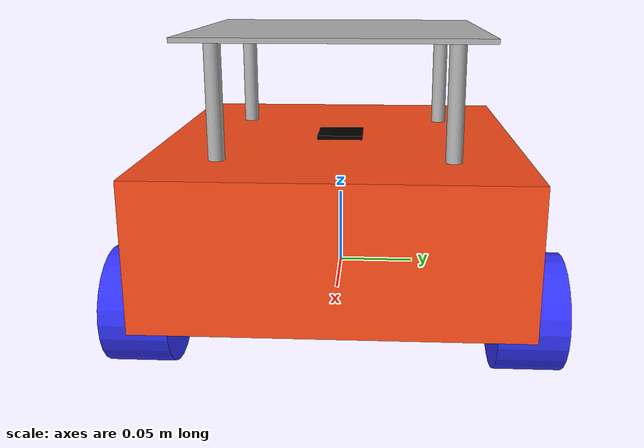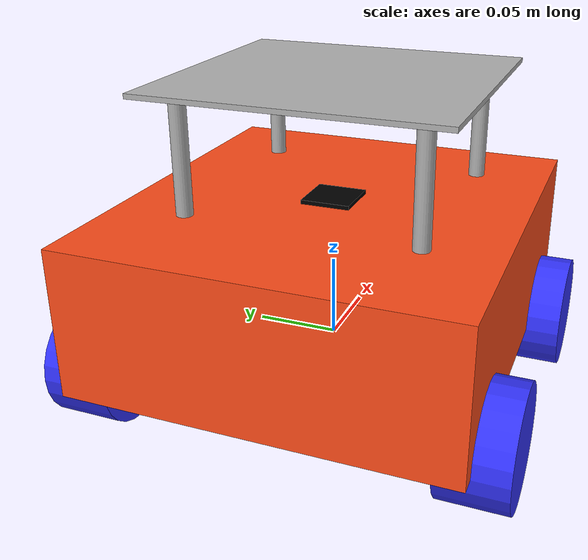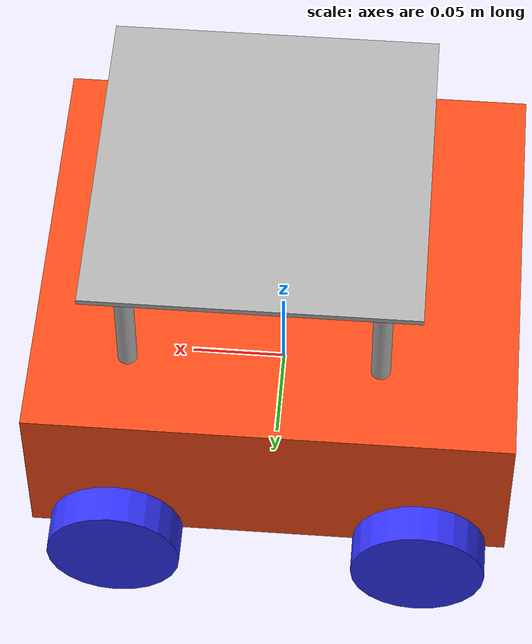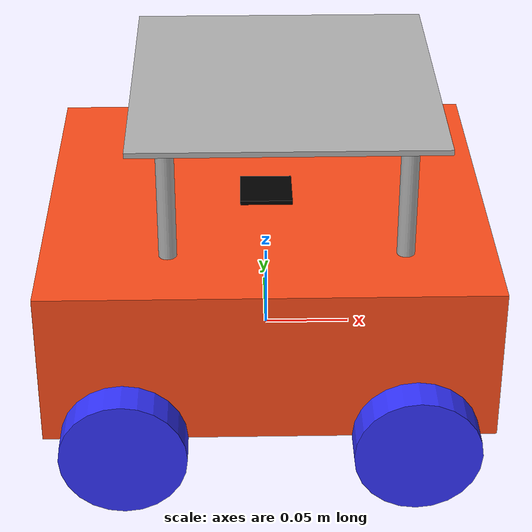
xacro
<?xml version="1.0"?>
<robot xmlns:xacro="http://www.ros.org/wiki/xacro">

  <xacro:include filename="inertial_macros.xacro"/>

  <!-- ═══════════════════════════════════════════════════════
       Properties
  ═══════════════════════════════════════════════════════ -->
  <xacro:property name="chassis_length"    value="0.25"/>
  <xacro:property name="chassis_width"     value="0.23"/>
  <xacro:property name="chassis_height"    value="0.09"/>
  <xacro:property name="chassis_mass"      value="1.0"/>

  <xacro:property name="wheel_radius"      value="0.035"/>
  <xacro:property name="wheel_thickness"   value="0.04"/>
  <xacro:property name="wheel_mass"        value="0.05"/>
  <xacro:property name="wheel_offset_x"    value="0.11"/>
  <xacro:property name="wheel_offset_y"    value="0.115"/>
  <xacro:property name="wheel_offset_z"    value="0.0"/>

  <xacro:property name="standoff_height"   value="0.07"/>
  <xacro:property name="standoff_radius"   value="0.005"/>
  <xacro:property name="plate_length"      value="0.17"/>
  <xacro:property name="plate_width"       value="0.18"/>
  <xacro:property name="plate_thickness"   value="0.003"/>
  <xacro:property name="standoff_inset_x"  value="0.02"/>
  <xacro:property name="standoff_inset_y"  value="0.02"/>

  <xacro:property name="plate_center_x"    value="0.01"/>
  <xacro:property name="plate_center_y"    value="0.0"/>
  <xacro:property name="plate_center_z"    value="${chassis_height + standoff_height + plate_thickness/2}"/>
  <xacro:property name="sx"                value="${(plate_length/2) - standoff_inset_x}"/>
  <xacro:property name="sy"                value="${(plate_width/2)  - standoff_inset_y}"/>
  <xacro:property name="standoff_center_z" value="${chassis_height + standoff_height/2}"/>

  <!-- ═══════════════════════════════════════════════════════
       Materials
  ═══════════════════════════════════════════════════════ -->
  <material name="white">    <color rgba="1 1 1 1"/>       </material>
  <material name="orange">   <color rgba="1 0.3 0.1 1"/>   </material>
  <material name="blue">     <color rgba="0.2 0.2 1 1"/>   </material>
  <material name="black">    <color rgba="0 0 0 1"/>        </material>
  <material name="red">      <color rgba="1 0 0 1"/>        </material>
  <material name="metal_gray"><color rgba="0.7 0.7 0.7 1"/></material>

  <link name="base_link"/>

  <!-- ═══════════════════════════════════════════════════════
       chassis
  ═══════════════════════════════════════════════════════ -->
  <joint name="chassis_joint" type="fixed">
    <parent link="base_link"/>
    <child  link="chassis"/>
    <origin xyz="0 0 0" rpy="0 0 0"/>
  </joint>

  <link name="chassis">
    <visual>
      <origin xyz="0 0 ${chassis_height/2}"/>
      <geometry>
        <box size="${chassis_length} ${chassis_width} ${chassis_height}"/>
      </geometry>
      <material name="orange"/>
    </visual>
    <collision>
      <origin xyz="0 0 ${chassis_height/2}"/>
      <geometry>
        <box size="${chassis_length} ${chassis_width} ${chassis_height}"/>
      </geometry>
    </collision>
    <xacro:inertial_box mass="0.5"
                        x="${chassis_length}"
                        y="${chassis_width}"
                        z="${chassis_height}">
      <origin xyz="0 0 ${chassis_height/2}" rpy="0 0 0"/>
    </xacro:inertial_box>
  </link>

  <!-- ═══════════════════════════════════════════════════════
       IMU  – direkt auf chassis, zentral und stabil
       Frame-Name: imu_link
  ═══════════════════════════════════════════════════════ -->
  <joint name="imu_joint" type="fixed">
    <parent link="chassis"/>
    <child  link="imu_link"/>
    <!-- mittig auf der Chassis-Oberfläche -->
    <origin xyz="0 0 ${chassis_height}" rpy="0 0 0"/>
  </joint>

  <link name="imu_link">
    <visual>
      <geometry><box size="0.03 0.03 0.005"/></geometry>
      <material name="black"/>
    </visual>
    <collision>
      <geometry><box size="0.03 0.03 0.005"/></geometry>
    </collision>
    <inertial>
      <mass value="0.01"/>
      <origin xyz="0 0 0" rpy="0 0 0"/>
      <inertia ixx="0.00001" ixy="0" ixz="0"
               iyy="0.00001" iyz="0" izz="0.00001"/>
    </inertial>
  </link>

  <!-- ═══════════════════════════════════════════════════════
       Wheels
  ═══════════════════════════════════════════════════════ -->

  <!-- LEFT FRONT -->
  <joint name="left_front_wheel_joint" type="continuous">
    <axis xyz="0 0 1"/>
    <parent link="chassis"/>
    <child  link="left_front_wheel"/>
    <origin xyz="0.08 ${wheel_offset_y} ${wheel_offset_z}" rpy="${pi/2} 0 0"/>
  </joint>
  <link name="left_front_wheel">
    <visual>
      <geometry><cylinder radius="${wheel_radius}" length="${wheel_thickness}"/></geometry>
      <material name="blue"/>
    </visual>
    <collision>
      <geometry><sphere radius="${wheel_radius}"/></geometry>
    </collision>
    <xacro:inertial_cylinder mass="${wheel_mass}"
                             length="${wheel_thickness}"
                             radius="${wheel_radius}">
      <origin xyz="0 0 0" rpy="0 0 0"/>
    </xacro:inertial_cylinder>
  </link>

  <!-- LEFT REAR -->
  <joint name="left_rear_wheel_joint" type="continuous">
    <axis xyz="0 0 1"/>
    <parent link="chassis"/>
    <child  link="left_rear_wheel"/>
    <origin xyz="-0.08 ${wheel_offset_y} ${wheel_offset_z}" rpy="${pi/2} 0 0"/>
  </joint>
  <link name="left_rear_wheel">
    <visual>
      <geometry><cylinder radius="${wheel_radius}" length="${wheel_thickness}"/></geometry>
      <material name="blue"/>
    </visual>
    <collision>
      <geometry><sphere radius="${wheel_radius}"/></geometry>
    </collision>
    <xacro:inertial_cylinder mass="${wheel_mass}"
                             length="${wheel_thickness}"
                             radius="${wheel_radius}">
      <origin xyz="0 0 0" rpy="0 0 0"/>
    </xacro:inertial_cylinder>
  </link>

  <!-- RIGHT FRONT -->
  <joint name="right_front_wheel_joint" type="continuous">
    <axis xyz="0 0 1"/>
    <parent link="chassis"/>
    <child  link="right_front_wheel"/>
    <origin xyz="0.08 ${-wheel_offset_y} ${wheel_offset_z}" rpy="${pi/2} 0 0"/>
  </joint>
  <link name="right_front_wheel">
    <visual>
      <geometry><cylinder radius="${wheel_radius}" length="${wheel_thickness}"/></geometry>
      <material name="blue"/>
    </visual>
    <collision>
      <geometry><sphere radius="${wheel_radius}"/></geometry>
    </collision>
    <xacro:inertial_cylinder mass="${wheel_mass}"
                             length="${wheel_thickness}"
                             radius="${wheel_radius}">
      <origin xyz="0 0 0" rpy="0 0 0"/>
    </xacro:inertial_cylinder>
  </link>

  <!-- RIGHT REAR -->
  <joint name="right_rear_wheel_joint" type="continuous">
    <axis xyz="0 0 1"/>
    <parent link="chassis"/>
    <child  link="right_rear_wheel"/>
    <origin xyz="-0.08 ${-wheel_offset_y} ${wheel_offset_z}" rpy="${pi/2} 0 0"/>
  </joint>
  <link name="right_rear_wheel">
    <visual>
      <geometry><cylinder radius="${wheel_radius}" length="${wheel_thickness}"/></geometry>
      <material name="blue"/>
    </visual>
    <collision>
      <geometry><sphere radius="${wheel_radius}"/></geometry>
    </collision>
    <xacro:inertial_cylinder mass="${wheel_mass}"
                             length="${wheel_thickness}"
                             radius="${wheel_radius}">
      <origin xyz="0 0 0" rpy="0 0 0"/>
    </xacro:inertial_cylinder>
  </link>

  <!-- ═══════════════════════════════════════════════════════
       Standoffs + top_plate
  ═══════════════════════════════════════════════════════ -->

  <joint name="standoff_fl_joint" type="fixed">
    <parent link="chassis"/>
    <child  link="standoff_fl"/>
    <origin xyz="${plate_center_x + sx} ${plate_center_y + sy} ${standoff_center_z}" rpy="0 0 0"/>
  </joint>
  <link name="standoff_fl">
    <visual><geometry><cylinder radius="${standoff_radius}" length="${standoff_height}"/></geometry><material name="metal_gray"/></visual>
    <collision><geometry><cylinder radius="${standoff_radius}" length="${standoff_height}"/></geometry></collision>
  </link>

  <joint name="standoff_fr_joint" type="fixed">
    <parent link="chassis"/>
    <child  link="standoff_fr"/>
    <origin xyz="${plate_center_x + sx} ${plate_center_y - sy} ${standoff_center_z}" rpy="0 0 0"/>
  </joint>
  <link name="standoff_fr">
    <visual><geometry><cylinder radius="${standoff_radius}" length="${standoff_height}"/></geometry><material name="metal_gray"/></visual>
    <collision><geometry><cylinder radius="${standoff_radius}" length="${standoff_height}"/></geometry></collision>
  </link>

  <joint name="standoff_rl_joint" type="fixed">
    <parent link="chassis"/>
    <child  link="standoff_rl"/>
    <origin xyz="${plate_center_x - sx} ${plate_center_y + sy} ${standoff_center_z}" rpy="0 0 0"/>
  </joint>
  <link name="standoff_rl">
    <visual><geometry><cylinder radius="${standoff_radius}" length="${standoff_height}"/></geometry><material name="metal_gray"/></visual>
    <collision><geometry><cylinder radius="${standoff_radius}" length="${standoff_height}"/></geometry></collision>
  </link>

  <joint name="standoff_rr_joint" type="fixed">
    <parent link="chassis"/>
    <child  link="standoff_rr"/>
    <origin xyz="${plate_center_x - sx} ${plate_center_y - sy} ${standoff_center_z}" rpy="0 0 0"/>
  </joint>
  <link name="standoff_rr">
    <visual><geometry><cylinder radius="${standoff_radius}" length="${standoff_height}"/></geometry><material name="metal_gray"/></visual>
    <collision><geometry><cylinder radius="${standoff_radius}" length="${standoff_height}"/></geometry></collision>
  </link>

  <joint name="top_plate_joint" type="fixed">
    <parent link="chassis"/>
    <child  link="top_plate"/>
    <origin xyz="${plate_center_x} ${plate_center_y} ${plate_center_z}" rpy="0 0 0"/>
  </joint>
  <link name="top_plate">
    <visual>
      <geometry><box size="${plate_length} ${plate_width} ${plate_thickness}"/></geometry>
      <material name="metal_gray"/>
    </visual>
    <collision>
      <geometry><box size="${plate_length} ${plate_width} ${plate_thickness}"/></geometry>
    </collision>
    <xacro:inertial_box mass="0.3"
                        x="${plate_length}"
                        y="${plate_width}"
                        z="${plate_thickness}">
      <origin xyz="0 0 0" rpy="0 0 0"/>
    </xacro:inertial_box>
  </link>

</robot>
